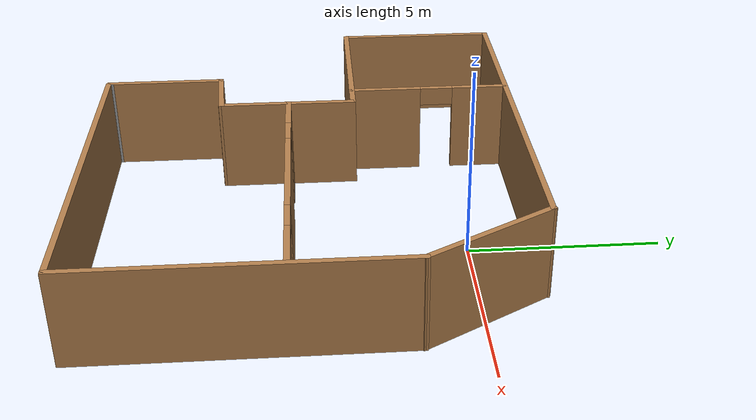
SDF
<?xml version='1.0'?>
<sdf version='1.7'>
  <model name='my_building'>
    <pose>-2.29966 -3.97311 0 0 -0 0</pose>
    <link name='Wall_41'>
      <collision name='Wall_41_Collision'>
        <geometry>
          <box>
            <size>9.5 0.15 2.5</size>
          </box>
        </geometry>
        <pose>0 0 1.25 0 -0 0</pose>
      </collision>
      <visual name='Wall_41_Visual'>
        <pose>0 0 1.25 0 -0 0</pose>
        <geometry>
          <box>
            <size>9.5 0.15 2.5</size>
          </box>
        </geometry>
        <material>
          <script>
            <uri>file://media/materials/scripts/gazebo.material</uri>
            <name>Gazebo/Wood</name>
          </script>
          <ambient>1 1 1 1</ambient>
        </material>
        <meta>
          <layer>0</layer>
        </meta>
      </visual>
      <pose>1.48467 -5.62256 0 0 -0 0</pose>
    </link>
    <link name='Wall_42'>
      <collision name='Wall_42_Collision'>
        <geometry>
          <box>
            <size>8.25004 0.15 2.5</size>
          </box>
        </geometry>
        <pose>0 0 1.25 0 -0 0</pose>
      </collision>
      <visual name='Wall_42_Visual'>
        <pose>0 0 1.25 0 -0 0</pose>
        <geometry>
          <box>
            <size>8.25004 0.15 2.5</size>
          </box>
        </geometry>
        <material>
          <script>
            <uri>file://media/materials/scripts/gazebo.material</uri>
            <name>Gazebo/Wood</name>
          </script>
          <ambient>1 1 1 1</ambient>
        </material>
        <meta>
          <layer>0</layer>
        </meta>
      </visual>
      <pose>6.18627 -1.57256 0 0 -0 1.5708</pose>
    </link>
    <link name='Wall_43'>
      <collision name='Wall_43_Collision'>
        <geometry>
          <box>
            <size>3.75 0.15 2.5</size>
          </box>
        </geometry>
        <pose>0 0 1.25 0 -0 0</pose>
      </collision>
      <visual name='Wall_43_Visual'>
        <pose>0 0 1.25 0 -0 0</pose>
        <geometry>
          <box>
            <size>3.75 0.15 2.5</size>
          </box>
        </geometry>
        <material>
          <script>
            <uri>file://media/materials/scripts/gazebo.material</uri>
            <name>Gazebo/Wood</name>
          </script>
          <ambient>1 1 1 1</ambient>
        </material>
        <meta>
          <layer>0</layer>
        </meta>
      </visual>
      <pose>5.28627 4.03629 0 0 -0 2.0944</pose>
    </link>
    <link name='Wall_44'>
      <collision name='Wall_44_Collision'>
        <geometry>
          <box>
            <size>10.75 0.15 2.5</size>
          </box>
        </geometry>
        <pose>0 0 1.25 0 -0 0</pose>
      </collision>
      <visual name='Wall_44_Visual'>
        <pose>0 0 1.25 0 -0 0</pose>
        <geometry>
          <box>
            <size>10.75 0.15 2.5</size>
          </box>
        </geometry>
        <material>
          <script>
            <uri>file://media/materials/scripts/gazebo.material</uri>
            <name>Gazebo/Wood</name>
          </script>
          <ambient>1 1 1 1</ambient>
        </material>
        <meta>
          <layer>0</layer>
        </meta>
      </visual>
      <pose>-0.913726 5.59513 0 0 -0 3.14159</pose>
    </link>
    <link name='Wall_45'>
      <collision name='Wall_45_Collision'>
        <geometry>
          <box>
            <size>4.5 0.15 2.5</size>
          </box>
        </geometry>
        <pose>0 0 1.25 0 -0 0</pose>
      </collision>
      <visual name='Wall_45_Visual'>
        <pose>0 0 1.25 0 -0 0</pose>
        <geometry>
          <box>
            <size>4.5 0.15 2.5</size>
          </box>
        </geometry>
        <material>
          <script>
            <uri>file://media/materials/scripts/gazebo.material</uri>
            <name>Gazebo/Wood</name>
          </script>
          <ambient>1 1 1 1</ambient>
        </material>
        <meta>
          <layer>0</layer>
        </meta>
      </visual>
      <pose>-6.21373 3.42013 0 0 -0 -1.5708</pose>
    </link>
    <link name='Wall_46'>
      <collision name='Wall_46_Collision'>
        <geometry>
          <box>
            <size>4.75 0.15 2.5</size>
          </box>
        </geometry>
        <pose>0 0 1.25 0 -0 0</pose>
      </collision>
      <visual name='Wall_46_Visual'>
        <pose>0 0 1.25 0 -0 0</pose>
        <geometry>
          <box>
            <size>4.75 0.15 2.5</size>
          </box>
        </geometry>
        <material>
          <script>
            <uri>file://media/materials/scripts/gazebo.material</uri>
            <name>Gazebo/Wood</name>
          </script>
          <ambient>1 1 1 1</ambient>
        </material>
        <meta>
          <layer>0</layer>
        </meta>
      </visual>
      <pose>-3.91373 1.24513 0 0 -0 0</pose>
    </link>
    <link name='Wall_47'>
      <collision name='Wall_47_Collision'>
        <geometry>
          <box>
            <size>3.75 0.15 2.5</size>
          </box>
        </geometry>
        <pose>0 0 1.25 0 -0 0</pose>
      </collision>
      <visual name='Wall_47_Visual'>
        <pose>0 0 1.25 0 -0 0</pose>
        <geometry>
          <box>
            <size>3.75 0.15 2.5</size>
          </box>
        </geometry>
        <material>
          <script>
            <uri>file://media/materials/scripts/gazebo.material</uri>
            <name>Gazebo/Wood</name>
          </script>
          <ambient>1 1 1 1</ambient>
        </material>
        <meta>
          <layer>0</layer>
        </meta>
      </visual>
      <pose>-1.61373 -0.554869 0 0 -0 -1.5708</pose>
    </link>
    <link name='Wall_48'>
      <collision name='Wall_48_Collision'>
        <geometry>
          <box>
            <size>1.79152 0.15 2.5</size>
          </box>
        </geometry>
        <pose>0 0 1.25 0 -0 0</pose>
      </collision>
      <visual name='Wall_48_Visual'>
        <pose>0 0 1.25 0 -0 0</pose>
        <geometry>
          <box>
            <size>1.79152 0.15 2.5</size>
          </box>
        </geometry>
        <material>
          <script>
            <uri>file://media/materials/scripts/gazebo.material</uri>
            <name>Gazebo/Wood</name>
          </script>
          <ambient>1 1 1 1</ambient>
        </material>
        <meta>
          <layer>0</layer>
        </meta>
      </visual>
      <pose>-2.43301 -2.40408 0 0 -0 -3.0816</pose>
    </link>
    <link name='Wall_49'>
      <collision name='Wall_49_Collision'>
        <geometry>
          <box>
            <size>3.25 0.15 2.5</size>
          </box>
        </geometry>
        <pose>0 0 1.25 0 -0 0</pose>
      </collision>
      <visual name='Wall_49_Visual'>
        <pose>0 0 1.25 0 -0 0</pose>
        <geometry>
          <box>
            <size>3.25 0.15 2.5</size>
          </box>
        </geometry>
        <material>
          <script>
            <uri>file://media/materials/scripts/gazebo.material</uri>
            <name>Gazebo/Wood</name>
          </script>
          <ambient>1 1 1 1</ambient>
        </material>
        <meta>
          <layer>0</layer>
        </meta>
      </visual>
      <pose>-3.2523 -4.03388 0 0 -0 -1.5708</pose>
    </link>
    <link name='Wall_50'>
      <collision name='Wall_50_Collision'>
        <geometry>
          <box>
            <size>0.15 0.15 2.5</size>
          </box>
        </geometry>
        <pose>0 0 1.25 0 -0 0</pose>
      </collision>
      <visual name='Wall_50_Visual'>
        <pose>0 0 1.25 0 -0 0</pose>
        <geometry>
          <box>
            <size>0.15 0.15 2.5</size>
          </box>
        </geometry>
        <material>
          <script>
            <uri>file://media/materials/scripts/gazebo.material</uri>
            <name>Gazebo/Grey</name>
          </script>
          <ambient>1 1 1 1</ambient>
        </material>
        <meta>
          <layer>0</layer>
        </meta>
      </visual>
      <pose>-3.2523 -5.55329 0 0 -0 0</pose>
    </link>
    <link name='Wall_52'>
      <pose>-2.32534 3.41711 0 0 -0 1.5708</pose>
      <visual name='Wall_52_Visual_0'>
        <pose>-1.21883 0 1.25 0 -0 0</pose>
        <geometry>
          <box>
            <size>1.96234 0.15 2.5</size>
          </box>
        </geometry>
        <material>
          <script>
            <uri>file://media/materials/scripts/gazebo.material</uri>
            <name>Gazebo/Wood</name>
          </script>
          <ambient>1 1 1 1</ambient>
        </material>
        <meta>
          <layer>0</layer>
        </meta>
      </visual>
      <collision name='Wall_52_Collision_0'>
        <geometry>
          <box>
            <size>1.96234 0.15 2.5</size>
          </box>
        </geometry>
        <pose>-1.21883 0 1.25 0 -0 0</pose>
      </collision>
      <visual name='Wall_52_Visual_1'>
        <pose>1.43117 0 1.25 0 -0 0</pose>
        <geometry>
          <box>
            <size>1.53766 0.15 2.5</size>
          </box>
        </geometry>
        <material>
          <script>
            <uri>file://media/materials/scripts/gazebo.material</uri>
            <name>Gazebo/Wood</name>
          </script>
          <ambient>1 1 1 1</ambient>
        </material>
        <meta>
          <layer>0</layer>
        </meta>
      </visual>
      <collision name='Wall_52_Collision_1'>
        <geometry>
          <box>
            <size>1.53766 0.15 2.5</size>
          </box>
        </geometry>
        <pose>1.43117 0 1.25 0 -0 0</pose>
      </collision>
      <visual name='Wall_52_Visual_2'>
        <pose>0.212344 0 2.25 0 -0 0</pose>
        <geometry>
          <box>
            <size>0.9 0.15 0.5</size>
          </box>
        </geometry>
        <material>
          <script>
            <uri>file://media/materials/scripts/gazebo.material</uri>
            <name>Gazebo/Wood</name>
          </script>
          <ambient>1 1 1 1</ambient>
        </material>
        <meta>
          <layer>0</layer>
        </meta>
      </visual>
      <collision name='Wall_52_Collision_2'>
        <geometry>
          <box>
            <size>0.9 0.15 0.5</size>
          </box>
        </geometry>
        <pose>0.212344 0 2.25 0 -0 0</pose>
      </collision>
    </link>
    <link name='Wall_54'>
      <pose>2.21366 -0.525889 0 0 -0 0</pose>
      <visual name='Wall_54_Visual_0'>
        <pose>-3.26596 0 1.25 0 -0 0</pose>
        <geometry>
          <box>
            <size>1.26809 0.15 2.5</size>
          </box>
        </geometry>
        <material>
          <script>
            <uri>file://media/materials/scripts/gazebo.material</uri>
            <name>Gazebo/Wood</name>
          </script>
          <ambient>1 1 1 1</ambient>
        </material>
        <meta>
          <layer>0</layer>
        </meta>
      </visual>
      <collision name='Wall_54_Collision_0'>
        <geometry>
          <box>
            <size>1.26809 0.15 2.5</size>
          </box>
        </geometry>
        <pose>-3.26596 0 1.25 0 -0 0</pose>
      </collision>
      <visual name='Wall_54_Visual_1'>
        <pose>-0.065074 0 1.25 0 -0 0</pose>
        <geometry>
          <box>
            <size>3.33368 0.15 2.5</size>
          </box>
        </geometry>
        <material>
          <script>
            <uri>file://media/materials/scripts/gazebo.material</uri>
            <name>Gazebo/Wood</name>
          </script>
          <ambient>1 1 1 1</ambient>
        </material>
        <meta>
          <layer>0</layer>
        </meta>
      </visual>
      <collision name='Wall_54_Collision_1'>
        <geometry>
          <box>
            <size>3.33368 0.15 2.5</size>
          </box>
        </geometry>
        <pose>-0.065074 0 1.25 0 -0 0</pose>
      </collision>
      <visual name='Wall_54_Visual_2'>
        <pose>3.20088 0 1.25 0 -0 0</pose>
        <geometry>
          <box>
            <size>1.39824 0.15 2.5</size>
          </box>
        </geometry>
        <material>
          <script>
            <uri>file://media/materials/scripts/gazebo.material</uri>
            <name>Gazebo/Wood</name>
          </script>
          <ambient>1 1 1 1</ambient>
        </material>
        <meta>
          <layer>0</layer>
        </meta>
      </visual>
      <collision name='Wall_54_Collision_2'>
        <geometry>
          <box>
            <size>1.39824 0.15 2.5</size>
          </box>
        </geometry>
        <pose>3.20088 0 1.25 0 -0 0</pose>
      </collision>
      <visual name='Wall_54_Visual_3'>
        <pose>-2.18191 0 2.25 0 -0 0</pose>
        <geometry>
          <box>
            <size>0.9 0.15 0.5</size>
          </box>
        </geometry>
        <material>
          <script>
            <uri>file://media/materials/scripts/gazebo.material</uri>
            <name>Gazebo/Wood</name>
          </script>
          <ambient>1 1 1 1</ambient>
        </material>
        <meta>
          <layer>0</layer>
        </meta>
      </visual>
      <collision name='Wall_54_Collision_3'>
        <geometry>
          <box>
            <size>0.9 0.15 0.5</size>
          </box>
        </geometry>
        <pose>-2.18191 0 2.25 0 -0 0</pose>
      </collision>
      <visual name='Wall_54_Visual_4'>
        <pose>2.05176 0 2.25 0 -0 0</pose>
        <geometry>
          <box>
            <size>0.9 0.15 0.5</size>
          </box>
        </geometry>
        <material>
          <script>
            <uri>file://media/materials/scripts/gazebo.material</uri>
            <name>Gazebo/Wood</name>
          </script>
          <ambient>1 1 1 1</ambient>
        </material>
        <meta>
          <layer>0</layer>
        </meta>
      </visual>
      <collision name='Wall_54_Collision_4'>
        <geometry>
          <box>
            <size>0.9 0.15 0.5</size>
          </box>
        </geometry>
        <pose>2.05176 0 2.25 0 -0 0</pose>
      </collision>
    </link>
    <static>1</static>
  </model>
</sdf>
